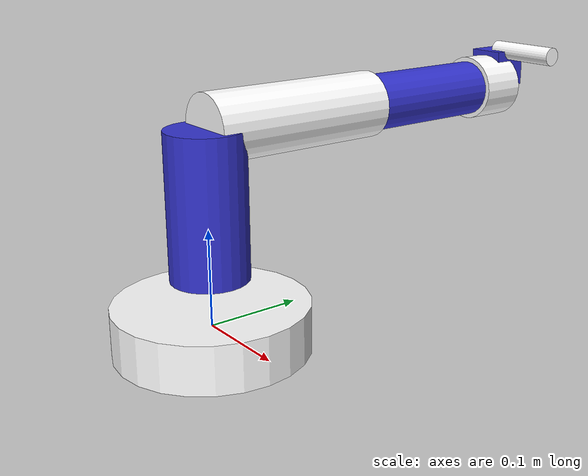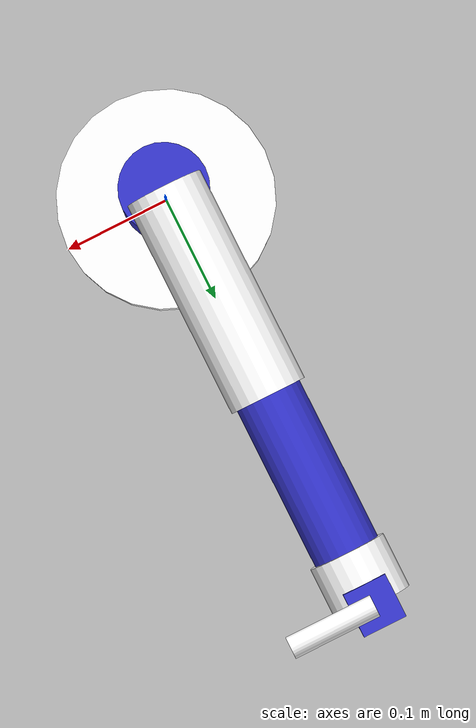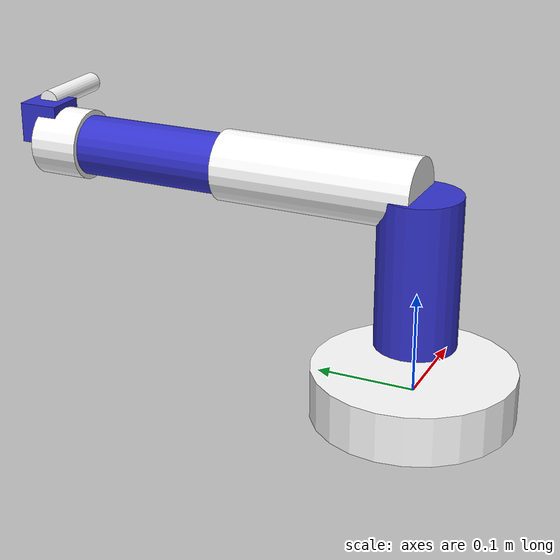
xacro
<?xml version="1.0"?>
<robot name="mock_arm" xmlns:xacro="http://ros.org/wiki/xacro">

  <!-- A basic white material -->
  <material name="white">
    <color rgba="1 1 1 1"/>
  </material>

  <!-- A basic blue material to alternate colors and make it easier to see joints -->
  <material name="blue">
    <color rgba="0.2 0.2 0.8 1"/>
  </material>

  <!-- Base Link -->
  <link name="base_link">
    <visual>
      <geometry>
        <cylinder length="0.05" radius="0.1"/>
      </geometry>
      <material name="white"/>
    </visual>
  </link>

  <!-- Joint 1 (Base Rotation / Yaw) -->
  <joint name="joint1" type="revolute">
    <parent link="base_link"/>
    <child link="link1"/>
    <origin xyz="0 0 0.05" rpy="0 0 0"/>
    <axis xyz="0 0 1"/>
    <limit lower="-3.14" upper="3.14" effort="10" velocity="1.0"/>
  </joint>

  <!-- Link 1 (Shoulder vertical post) -->
  <link name="link1">
    <visual>
      <geometry>
        <cylinder length="0.15" radius="0.04"/>
      </geometry>
      <origin xyz="0 0 0.075" rpy="0 0 0"/>
      <material name="blue"/>
    </visual>
  </link>

  <!-- Joint 2 (Shoulder Pitch) -->
  <joint name="joint2" type="revolute">
    <parent link="link1"/>
    <child link="link2"/>
    <origin xyz="0 0 0.15" rpy="0 1.5708 0"/>
    <axis xyz="0 0 1"/> <!-- Rotates around Z because we rotated the joint origin by 90 deg (1.57 rad) in Y -->
    <limit lower="-1.57" upper="1.57" effort="10" velocity="1.0"/>
  </joint>

  <!-- Link 2 (Upper Arm) -->
  <link name="link2">
    <visual>
      <geometry>
        <cylinder length="0.2" radius="0.035"/>
      </geometry>
      <origin xyz="0 0.1 0" rpy="1.5708 0 0"/>
      <material name="white"/>
    </visual>
  </link>

  <!-- Joint 3 (Elbow Pitch) -->
  <joint name="joint3" type="revolute">
    <parent link="link2"/>
    <child link="link3"/>
    <origin xyz="0 0.2 0" rpy="0 0 0"/>
    <axis xyz="0 0 1"/>
    <limit lower="-1.57" upper="1.57" effort="10" velocity="1.0"/>
  </joint>

  <!-- Link 3 (Forearm) -->
  <link name="link3">
    <visual>
      <geometry>
        <cylinder length="0.15" radius="0.03"/>
      </geometry>
      <origin xyz="0 0.075 0" rpy="1.5708 0 0"/>
      <material name="blue"/>
    </visual>
  </link>

  <!-- Joint 4 (Wrist Pitch) -->
  <joint name="joint4" type="revolute">
    <parent link="link3"/>
    <child link="link4"/>
    <origin xyz="0 0.15 0" rpy="0 0 0"/>
    <axis xyz="0 0 1"/>
    <limit lower="-1.57" upper="1.57" effort="10" velocity="1.0"/>
  </joint>

  <!-- Link 4 (Wrist) -->
  <link name="link4">
    <visual>
      <geometry>
        <cylinder length="0.05" radius="0.035"/>
      </geometry>
      <origin xyz="0 0.025 0" rpy="1.5708 0 0"/>
      <material name="white"/>
    </visual>
  </link>

  <!-- Joint 5 (Wrist Roll) -->
  <joint name="joint5" type="revolute">
    <parent link="link4"/>
    <child link="link5"/>
    <origin xyz="0 0.05 0" rpy="0 0 1.5708"/>
    <axis xyz="0 0 1"/>
    <limit lower="-3.14" upper="3.14" effort="10" velocity="1.0"/>
  </joint>

  <!-- Link 5 (End Effector Base) -->
  <link name="link5">
    <visual>
      <geometry>
        <box size="0.04 0.04 0.04"/>
      </geometry>
      <origin xyz="0 0.02 0" rpy="0 0 0"/>
      <material name="blue"/>
    </visual>
  </link>

  <!-- Joint 6 (End Effector Roll) -->
  <joint name="joint6" type="revolute">
    <parent link="link5"/>
    <child link="link6"/>
    <origin xyz="0 0.04 0" rpy="1.5708 0 0"/>
    <axis xyz="0 0 1"/>
    <limit lower="-3.14" upper="3.14" effort="10" velocity="1.0"/>
  </joint>

  <!-- Link 6 (End Effector) -->
  <link name="link6">
    <visual>
      <geometry>
        <cylinder length="0.08" radius="0.01"/>
      </geometry>
      <origin xyz="0 0.04 0" rpy="1.5708 0 0"/>
      <material name="white"/>
    </visual>
  </link>

</robot>
